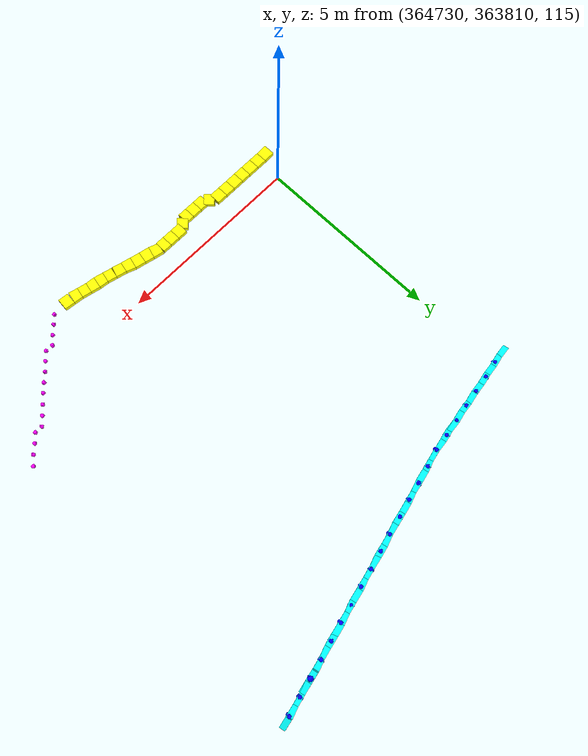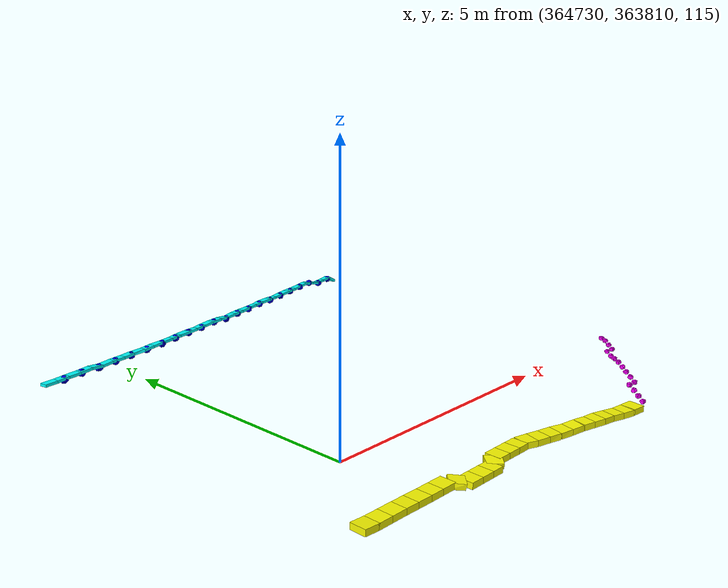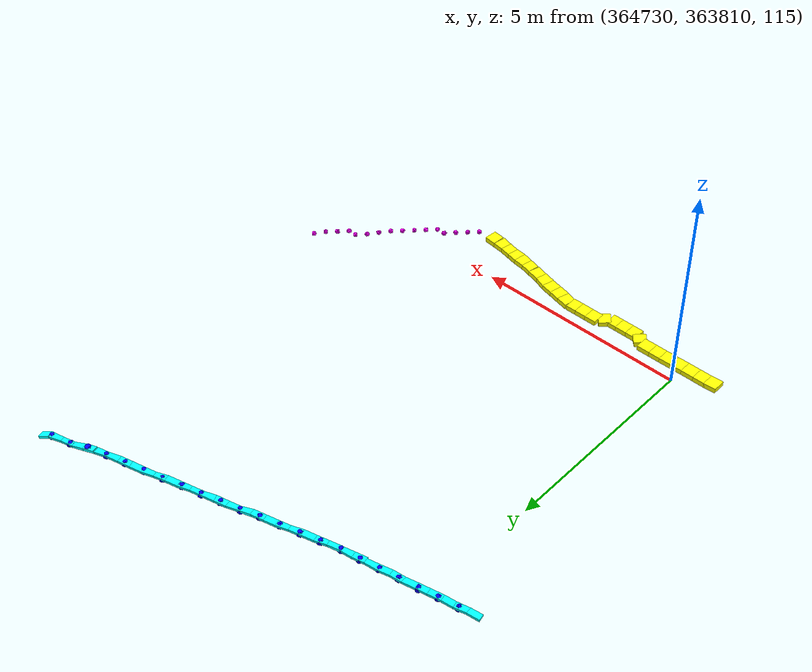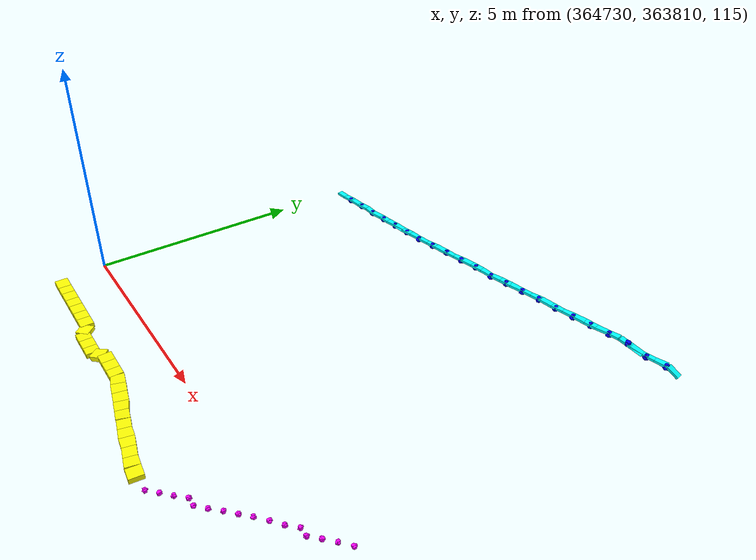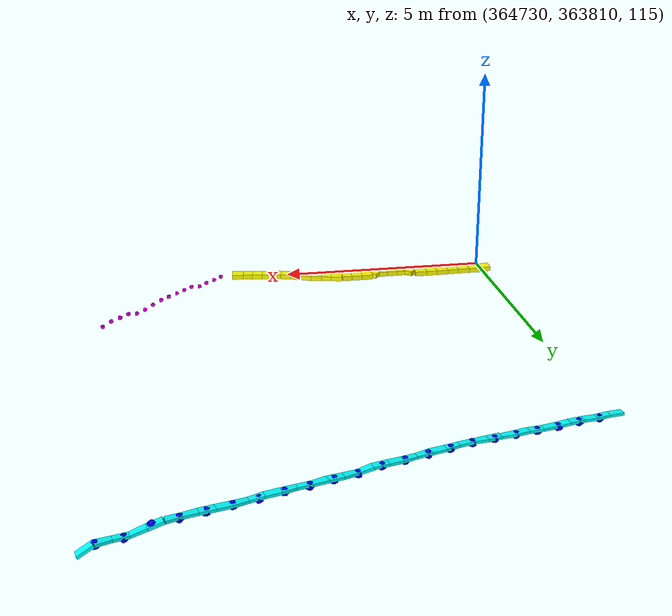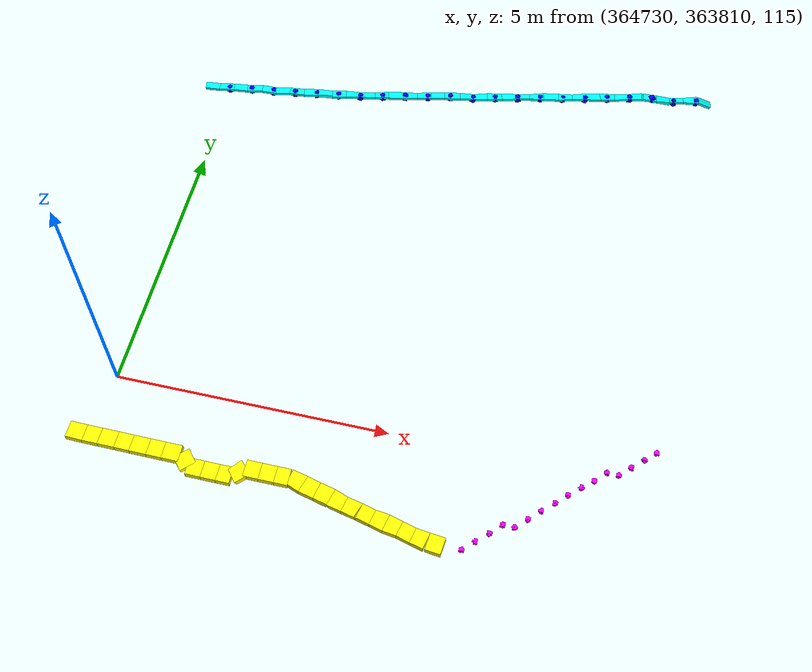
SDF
<sdf version="1.5">
 <world name="default">
  <include><uri>model://sun</uri></include>
  <model name="road_segment_276">
   <static>true</static>
   <pose>364729.49 363809.04 114.50000000026193 0 0.0665681629285173 0.0</pose>
   <link name="link">
    <collision name="collision">
     <geometry><box><size>0.30066592753880705 0.3 0.12</size></box></geometry>
     <surface><friction><ode><mu>0.02</mu><mu2>0.02</mu2></ode></friction></surface>
    </collision>
    <visual name="visual">
     <geometry><box><size>0.30066592753880705 0.3 0.12</size></box></geometry>
     <material><ambient>1 1 0 1</ambient><diffuse>1 1 0 1</diffuse><emissive>1 1 0 1</emissive></material>
    </visual>
   </link>
  </model>
  <model name="road_segment_277">
   <static>true</static>
   <pose>364729.79000000004 363809.04 114.49000000026193 0 8.536934122910294e-10 0.0</pose>
   <link name="link">
    <collision name="collision">
     <geometry><box><size>0.29999999998835847 0.3 0.12</size></box></geometry>
     <surface><friction><ode><mu>0.02</mu><mu2>0.02</mu2></ode></friction></surface>
    </collision>
    <visual name="visual">
     <geometry><box><size>0.29999999998835847 0.3 0.12</size></box></geometry>
     <material><ambient>1 1 0 1</ambient><diffuse>1 1 0 1</diffuse><emissive>1 1 0 1</emissive></material>
    </visual>
   </link>
  </model>
  <model name="road_segment_278">
   <static>true</static>
   <pose>364730.08999999997 363809.04 114.49000000013388 0 -0.0 0.0</pose>
   <link name="link">
    <collision name="collision">
     <geometry><box><size>0.29999999998835847 0.3 0.12</size></box></geometry>
     <surface><friction><ode><mu>0.02</mu><mu2>0.02</mu2></ode></friction></surface>
    </collision>
    <visual name="visual">
     <geometry><box><size>0.29999999998835847 0.3 0.12</size></box></geometry>
     <material><ambient>1 1 0 1</ambient><diffuse>1 1 0 1</diffuse><emissive>1 1 0 1</emissive></material>
    </visual>
   </link>
  </model>
  <model name="road_segment_279">
   <static>true</static>
   <pose>364730.39 363809.04 114.4875000001666 0 0.01666512349640141 0.0</pose>
   <link name="link">
    <collision name="collision">
     <geometry><box><size>0.300041663760819 0.3 0.12</size></box></geometry>
     <surface><friction><ode><mu>0.02</mu><mu2>0.02</mu2></ode></friction></surface>
    </collision>
    <visual name="visual">
     <geometry><box><size>0.300041663760819 0.3 0.12</size></box></geometry>
     <material><ambient>1 1 0 1</ambient><diffuse>1 1 0 1</diffuse><emissive>1 1 0 1</emissive></material>
    </visual>
   </link>
  </model>
  <model name="road_segment_280">
   <static>true</static>
   <pose>364730.69 363809.04 114.48250000009968 0 0.01666512437565434 0.0</pose>
   <link name="link">
    <collision name="collision">
     <geometry><box><size>0.30004166382343156 0.3 0.12</size></box></geometry>
     <surface><friction><ode><mu>0.02</mu><mu2>0.02</mu2></ode></friction></surface>
    </collision>
    <visual name="visual">
     <geometry><box><size>0.30004166382343156 0.3 0.12</size></box></geometry>
     <material><ambient>1 1 0 1</ambient><diffuse>1 1 0 1</diffuse><emissive>1 1 0 1</emissive></material>
    </visual>
   </link>
  </model>
  <model name="road_segment_281">
   <static>true</static>
   <pose>364730.99 363809.04 114.48 0 -0.0 0.0</pose>
   <link name="link">
    <collision name="collision">
     <geometry><box><size>0.29999999998835847 0.3 0.12</size></box></geometry>
     <surface><friction><ode><mu>0.02</mu><mu2>0.02</mu2></ode></friction></surface>
    </collision>
    <visual name="visual">
     <geometry><box><size>0.29999999998835847 0.3 0.12</size></box></geometry>
     <material><ambient>1 1 0 1</ambient><diffuse>1 1 0 1</diffuse><emissive>1 1 0 1</emissive></material>
    </visual>
   </link>
  </model>
  <model name="road_segment_282">
   <static>true</static>
   <pose>364731.29000000004 363809.04 114.48 0 -0.0 0.0</pose>
   <link name="link">
    <collision name="collision">
     <geometry><box><size>0.29999999998835847 0.3 0.12</size></box></geometry>
     <surface><friction><ode><mu>0.02</mu><mu2>0.02</mu2></ode></friction></surface>
    </collision>
    <visual name="visual">
     <geometry><box><size>0.29999999998835847 0.3 0.12</size></box></geometry>
     <material><ambient>1 1 0 1</ambient><diffuse>1 1 0 1</diffuse><emissive>1 1 0 1</emissive></material>
    </visual>
   </link>
  </model>
  <model name="road_segment_283">
   <static>true</static>
   <pose>364731.54000000004 363808.94 114.47000000013388 0 0.07059317834825851 -0.7853981632519291</pose>
   <link name="link">
    <collision name="collision">
     <geometry><box><size>0.2835489375316369 0.3 0.12</size></box></geometry>
     <surface><friction><ode><mu>0.2</mu><mu2>0.2</mu2></ode></friction></surface>
    </collision>
    <visual name="visual">
     <geometry><box><size>0.2835489375316369 0.3 0.12</size></box></geometry>
     <material><ambient>1 1 0 1</ambient><diffuse>1 1 0 1</diffuse><emissive>1 1 0 1</emissive></material>
    </visual>
   </link>
  </model>
  <model name="road_segment_284">
   <static>true</static>
   <pose>364731.7733333333 363808.84 114.46000000013387 0 1.0041034670539973e-09 0.0</pose>
   <link name="link">
    <collision name="collision">
     <geometry><box><size>0.26666666666278616 0.3 0.12</size></box></geometry>
     <surface><friction><ode><mu>0.02</mu><mu2>0.02</mu2></ode></friction></surface>
    </collision>
    <visual name="visual">
     <geometry><box><size>0.26666666666278616 0.3 0.12</size></box></geometry>
     <material><ambient>1 1 0 1</ambient><diffuse>1 1 0 1</diffuse><emissive>1 1 0 1</emissive></material>
    </visual>
   </link>
  </model>
  <model name="road_segment_285">
   <static>true</static>
   <pose>364732.04000000004 363808.84 114.46 0 -0.0 0.0</pose>
   <link name="link">
    <collision name="collision">
     <geometry><box><size>0.26666666666278616 0.3 0.12</size></box></geometry>
     <surface><friction><ode><mu>0.02</mu><mu2>0.02</mu2></ode></friction></surface>
    </collision>
    <visual name="visual">
     <geometry><box><size>0.26666666666278616 0.3 0.12</size></box></geometry>
     <material><ambient>1 1 0 1</ambient><diffuse>1 1 0 1</diffuse><emissive>1 1 0 1</emissive></material>
    </visual>
   </link>
  </model>
  <model name="road_segment_286">
   <static>true</static>
   <pose>364732.30666666664 363808.84 114.46 0 -0.0 0.0</pose>
   <link name="link">
    <collision name="collision">
     <geometry><box><size>0.26666666666278616 0.3 0.12</size></box></geometry>
     <surface><friction><ode><mu>0.02</mu><mu2>0.02</mu2></ode></friction></surface>
    </collision>
    <visual name="visual">
     <geometry><box><size>0.26666666666278616 0.3 0.12</size></box></geometry>
     <material><ambient>1 1 0 1</ambient><diffuse>1 1 0 1</diffuse><emissive>1 1 0 1</emissive></material>
    </visual>
   </link>
  </model>
  <model name="road_segment_287">
   <static>true</static>
   <pose>364732.54000000004 363808.94 114.4650000003376 0 -0.03534062109405549 0.7853981632519291</pose>
   <link name="link">
    <collision name="collision">
     <geometry><box><size>0.2830194339608753 0.3 0.12</size></box></geometry>
     <surface><friction><ode><mu>0.02</mu><mu2>0.02</mu2></ode></friction></surface>
    </collision>
    <visual name="visual">
     <geometry><box><size>0.2830194339608753 0.3 0.12</size></box></geometry>
     <material><ambient>1 1 0 1</ambient><diffuse>1 1 0 1</diffuse><emissive>1 1 0 1</emissive></material>
    </visual>
   </link>
  </model>
  <model name="road_segment_288">
   <static>true</static>
   <pose>364732.7733333333 363809.04 114.4700000005384 0 1.0258993654737554e-09 0.0</pose>
   <link name="link">
    <collision name="collision">
     <geometry><box><size>0.26666666666278616 0.3 0.12</size></box></geometry>
     <surface><friction><ode><mu>0.02</mu><mu2>0.02</mu2></ode></friction></surface>
    </collision>
    <visual name="visual">
     <geometry><box><size>0.26666666666278616 0.3 0.12</size></box></geometry>
     <material><ambient>1 1 0 1</ambient><diffuse>1 1 0 1</diffuse><emissive>1 1 0 1</emissive></material>
    </visual>
   </link>
  </model>
  <model name="road_segment_289">
   <static>true</static>
   <pose>364733.04000000004 363809.04 114.47000000040163 0 -0.0 0.0</pose>
   <link name="link">
    <collision name="collision">
     <geometry><box><size>0.26666666666278616 0.3 0.12</size></box></geometry>
     <surface><friction><ode><mu>0.02</mu><mu2>0.02</mu2></ode></friction></surface>
    </collision>
    <visual name="visual">
     <geometry><box><size>0.26666666666278616 0.3 0.12</size></box></geometry>
     <material><ambient>1 1 0 1</ambient><diffuse>1 1 0 1</diffuse><emissive>1 1 0 1</emissive></material>
    </visual>
   </link>
  </model>
  <model name="road_segment_290">
   <static>true</static>
   <pose>364733.30666666664 363809.04 114.47000000040163 0 -0.0 0.0</pose>
   <link name="link">
    <collision name="collision">
     <geometry><box><size>0.26666666666278616 0.3 0.12</size></box></geometry>
     <surface><friction><ode><mu>0.02</mu><mu2>0.02</mu2></ode></friction></surface>
    </collision>
    <visual name="visual">
     <geometry><box><size>0.26666666666278616 0.3 0.12</size></box></geometry>
     <material><ambient>1 1 0 1</ambient><diffuse>1 1 0 1</diffuse><emissive>1 1 0 1</emissive></material>
    </visual>
   </link>
  </model>
  <model name="road_segment_291">
   <static>true</static>
   <pose>364733.57333333336 363809.00666666665 114.4683333334677 0 0.012126188798864344 -0.24497866307550445</pose>
   <link name="link">
    <collision name="collision">
     <geometry><box><size>0.27489391893254195 0.3 0.12</size></box></geometry>
     <surface><friction><ode><mu>0.02</mu><mu2>0.02</mu2></ode></friction></surface>
    </collision>
    <visual name="visual">
     <geometry><box><size>0.27489391893254195 0.3 0.12</size></box></geometry>
     <material><ambient>1 1 0 1</ambient><diffuse>1 1 0 1</diffuse><emissive>1 1 0 1</emissive></material>
    </visual>
   </link>
  </model>
  <model name="road_segment_292">
   <static>true</static>
   <pose>364733.83999999997 363808.94 114.46499999986757 0 0.01212618685105899 -0.24497866307550445</pose>
   <link name="link">
    <collision name="collision">
     <geometry><box><size>0.27489391892604875 0.3 0.12</size></box></geometry>
     <surface><friction><ode><mu>0.02</mu><mu2>0.02</mu2></ode></friction></surface>
    </collision>
    <visual name="visual">
     <geometry><box><size>0.27489391892604875 0.3 0.12</size></box></geometry>
     <material><ambient>1 1 0 1</ambient><diffuse>1 1 0 1</diffuse><emissive>1 1 0 1</emissive></material>
    </visual>
   </link>
  </model>
  <model name="road_segment_293">
   <static>true</static>
   <pose>364734.1066666667 363808.8733333333 114.46166666660069 0 0.012126186373991309 -0.24497866328094325</pose>
   <link name="link">
    <collision name="collision">
     <geometry><box><size>0.2748939189385769 0.3 0.12</size></box></geometry>
     <surface><friction><ode><mu>0.02</mu><mu2>0.02</mu2></ode></friction></surface>
    </collision>
    <visual name="visual">
     <geometry><box><size>0.2748939189385769 0.3 0.12</size></box></geometry>
     <material><ambient>1 1 0 1</ambient><diffuse>1 1 0 1</diffuse><emissive>1 1 0 1</emissive></material>
    </visual>
   </link>
  </model>
  <model name="road_segment_294">
   <static>true</static>
   <pose>364734.3733333333 363808.80666666664 114.46333333318975 0 -0.02424880753749909 -0.24497866307550445</pose>
   <link name="link">
    <collision name="collision">
     <geometry><box><size>0.27495454168286093 0.3 0.12</size></box></geometry>
     <surface><friction><ode><mu>0.02</mu><mu2>0.02</mu2></ode></friction></surface>
    </collision>
    <visual name="visual">
     <geometry><box><size>0.27495454168286093 0.3 0.12</size></box></geometry>
     <material><ambient>1 1 0 1</ambient><diffuse>1 1 0 1</diffuse><emissive>1 1 0 1</emissive></material>
    </visual>
   </link>
  </model>
  <model name="road_segment_295">
   <static>true</static>
   <pose>364734.64 363808.74 114.47333333318976 0 -0.04846913486712039 -0.24497866307550445</pose>
   <link name="link">
    <collision name="collision">
     <geometry><box><size>0.27519689921372975 0.3 0.12</size></box></geometry>
     <surface><friction><ode><mu>0.02</mu><mu2>0.02</mu2></ode></friction></surface>
    </collision>
    <visual name="visual">
     <geometry><box><size>0.27519689921372975 0.3 0.12</size></box></geometry>
     <material><ambient>1 1 0 1</ambient><diffuse>1 1 0 1</diffuse><emissive>1 1 0 1</emissive></material>
    </visual>
   </link>
  </model>
  <model name="road_segment_296">
   <static>true</static>
   <pose>364734.9066666666 363808.67333333334 114.48 0 -0.0 -0.24497866307550445</pose>
   <link name="link">
    <collision name="collision">
     <geometry><box><size>0.2748737083669814 0.3 0.12</size></box></geometry>
     <surface><friction><ode><mu>0.02</mu><mu2>0.02</mu2></ode></friction></surface>
    </collision>
    <visual name="visual">
     <geometry><box><size>0.2748737083669814 0.3 0.12</size></box></geometry>
     <material><ambient>1 1 0 1</ambient><diffuse>1 1 0 1</diffuse><emissive>1 1 0 1</emissive></material>
    </visual>
   </link>
  </model>
  <model name="road_segment_297">
   <static>true</static>
   <pose>364735.165 363808.615 114.48 0 -0.0 -0.19739555980510565</pose>
   <link name="link">
    <collision name="collision">
     <geometry><box><size>0.25495097567735614 0.3 0.12</size></box></geometry>
     <surface><friction><ode><mu>0.02</mu><mu2>0.02</mu2></ode></friction></surface>
    </collision>
    <visual name="visual">
     <geometry><box><size>0.25495097567735614 0.3 0.12</size></box></geometry>
     <material><ambient>1 1 0 1</ambient><diffuse>1 1 0 1</diffuse><emissive>1 1 0 1</emissive></material>
    </visual>
   </link>
  </model>
  <model name="road_segment_298">
   <static>true</static>
   <pose>364735.415 363808.56500000006 114.47500000014698 0 0.039203129948236 -0.19739555980510565</pose>
   <link name="link">
    <collision name="collision">
     <geometry><box><size>0.2551470164296595 0.3 0.12</size></box></geometry>
     <surface><friction><ode><mu>0.02</mu><mu2>0.02</mu2></ode></friction></surface>
    </collision>
    <visual name="visual">
     <geometry><box><size>0.2551470164296595 0.3 0.12</size></box></geometry>
     <material><ambient>1 1 0 1</ambient><diffuse>1 1 0 1</diffuse><emissive>1 1 0 1</emissive></material>
    </visual>
   </link>
  </model>
  <model name="road_segment_299">
   <static>true</static>
   <pose>364735.665 363808.515 114.46500000014697 0 0.03920313224888583 -0.19739556002898126</pose>
   <link name="link">
    <collision name="collision">
     <geometry><box><size>0.2551470164641079 0.3 0.12</size></box></geometry>
     <surface><friction><ode><mu>0.02</mu><mu2>0.02</mu2></ode></friction></surface>
    </collision>
    <visual name="visual">
     <geometry><box><size>0.2551470164641079 0.3 0.12</size></box></geometry>
     <material><ambient>1 1 0 1</ambient><diffuse>1 1 0 1</diffuse><emissive>1 1 0 1</emissive></material>
    </visual>
   </link>
  </model>
  <model name="road_segment_300">
   <static>true</static>
   <pose>364735.915 363808.46499999997 114.46 0 -0.0 -0.19739555980510565</pose>
   <link name="link">
    <collision name="collision">
     <geometry><box><size>0.25495097567735614 0.3 0.12</size></box></geometry>
     <surface><friction><ode><mu>0.02</mu><mu2>0.02</mu2></ode></friction></surface>
    </collision>
    <visual name="visual">
     <geometry><box><size>0.25495097567735614 0.3 0.12</size></box></geometry>
     <material><ambient>1 1 0 1</ambient><diffuse>1 1 0 1</diffuse><emissive>1 1 0 1</emissive></material>
    </visual>
   </link>
  </model>
  <model name="road_segment_301">
   <static>true</static>
   <pose>364736.18666666665 363808.42666666664 114.46 0 -0.0 -0.09065988721863681</pose>
   <link name="link">
    <collision name="collision">
     <geometry><box><size>0.29454296046036466 0.3 0.12</size></box></geometry>
     <surface><friction><ode><mu>0.02</mu><mu2>0.02</mu2></ode></friction></surface>
    </collision>
    <visual name="visual">
     <geometry><box><size>0.29454296046036466 0.3 0.12</size></box></geometry>
     <material><ambient>1 1 0 1</ambient><diffuse>1 1 0 1</diffuse><emissive>1 1 0 1</emissive></material>
    </visual>
   </link>
  </model>
  <model name="straight_marker_193">
   <static>true</static>
   <pose>364736.64 363808.44 114.44999999999999 0 0 0</pose>
   <link name="link">
    <visual name="visual">
     <geometry><sphere><radius>0.05</radius></sphere></geometry>
     <material><ambient>1 0 1 1</ambient><diffuse>1 0 1 1</diffuse><emissive>1 0 1 1</emissive></material>
    </visual>
   </link>
  </model>
  <model name="straight_marker_194">
   <static>true</static>
   <pose>364736.84 363808.64 114.44999999999999 0 0 0</pose>
   <link name="link">
    <visual name="visual">
     <geometry><sphere><radius>0.05</radius></sphere></geometry>
     <material><ambient>1 0 1 1</ambient><diffuse>1 0 1 1</diffuse><emissive>1 0 1 1</emissive></material>
    </visual>
   </link>
  </model>
  <model name="straight_marker_195">
   <static>true</static>
   <pose>364737.04 363808.84 114.44999999999999 0 0 0</pose>
   <link name="link">
    <visual name="visual">
     <geometry><sphere><radius>0.05</radius></sphere></geometry>
     <material><ambient>1 0 1 1</ambient><diffuse>1 0 1 1</diffuse><emissive>1 0 1 1</emissive></material>
    </visual>
   </link>
  </model>
  <model name="straight_marker_196">
   <static>true</static>
   <pose>364737.24 363809.04 114.44999999999999 0 0 0</pose>
   <link name="link">
    <visual name="visual">
     <geometry><sphere><radius>0.05</radius></sphere></geometry>
     <material><ambient>1 0 1 1</ambient><diffuse>1 0 1 1</diffuse><emissive>1 0 1 1</emissive></material>
    </visual>
   </link>
  </model>
  <model name="straight_marker_197">
   <static>true</static>
   <pose>364737.44 363809.04 114.44999999999999 0 0 0</pose>
   <link name="link">
    <visual name="visual">
     <geometry><sphere><radius>0.05</radius></sphere></geometry>
     <material><ambient>1 0 1 1</ambient><diffuse>1 0 1 1</diffuse><emissive>1 0 1 1</emissive></material>
    </visual>
   </link>
  </model>
  <model name="straight_marker_198">
   <static>true</static>
   <pose>364737.64 363809.24 114.44999999999999 0 0 0</pose>
   <link name="link">
    <visual name="visual">
     <geometry><sphere><radius>0.05</radius></sphere></geometry>
     <material><ambient>1 0 1 1</ambient><diffuse>1 0 1 1</diffuse><emissive>1 0 1 1</emissive></material>
    </visual>
   </link>
  </model>
  <model name="straight_marker_199">
   <static>true</static>
   <pose>364737.84 363809.44 114.44999999999999 0 0 0</pose>
   <link name="link">
    <visual name="visual">
     <geometry><sphere><radius>0.05</radius></sphere></geometry>
     <material><ambient>1 0 1 1</ambient><diffuse>1 0 1 1</diffuse><emissive>1 0 1 1</emissive></material>
    </visual>
   </link>
  </model>
  <model name="straight_marker_200">
   <static>true</static>
   <pose>364738.04 363809.64 114.44999999999999 0 0 0</pose>
   <link name="link">
    <visual name="visual">
     <geometry><sphere><radius>0.05</radius></sphere></geometry>
     <material><ambient>1 0 1 1</ambient><diffuse>1 0 1 1</diffuse><emissive>1 0 1 1</emissive></material>
    </visual>
   </link>
  </model>
  <model name="straight_marker_201">
   <static>true</static>
   <pose>364738.24 363809.84 114.44999999999999 0 0 0</pose>
   <link name="link">
    <visual name="visual">
     <geometry><sphere><radius>0.05</radius></sphere></geometry>
     <material><ambient>1 0 1 1</ambient><diffuse>1 0 1 1</diffuse><emissive>1 0 1 1</emissive></material>
    </visual>
   </link>
  </model>
  <model name="straight_marker_202">
   <static>true</static>
   <pose>364738.44 363810.04 114.42000000041035 0 0 0</pose>
   <link name="link">
    <visual name="visual">
     <geometry><sphere><radius>0.05</radius></sphere></geometry>
     <material><ambient>1 0 1 1</ambient><diffuse>1 0 1 1</diffuse><emissive>1 0 1 1</emissive></material>
    </visual>
   </link>
  </model>
  <model name="straight_marker_203">
   <static>true</static>
   <pose>364738.64 363810.24 114.380000000617 0 0 0</pose>
   <link name="link">
    <visual name="visual">
     <geometry><sphere><radius>0.05</radius></sphere></geometry>
     <material><ambient>1 0 1 1</ambient><diffuse>1 0 1 1</diffuse><emissive>1 0 1 1</emissive></material>
    </visual>
   </link>
  </model>
  <model name="straight_marker_204">
   <static>true</static>
   <pose>364738.84 363810.44 114.38 0 0 0</pose>
   <link name="link">
    <visual name="visual">
     <geometry><sphere><radius>0.05</radius></sphere></geometry>
     <material><ambient>1 0 1 1</ambient><diffuse>1 0 1 1</diffuse><emissive>1 0 1 1</emissive></material>
    </visual>
   </link>
  </model>
  <model name="straight_marker_205">
   <static>true</static>
   <pose>364739.04 363810.44 114.38 0 0 0</pose>
   <link name="link">
    <visual name="visual">
     <geometry><sphere><radius>0.05</radius></sphere></geometry>
     <material><ambient>1 0 1 1</ambient><diffuse>1 0 1 1</diffuse><emissive>1 0 1 1</emissive></material>
    </visual>
   </link>
  </model>
  <model name="straight_marker_206">
   <static>true</static>
   <pose>364739.24 363810.64 114.38 0 0 0</pose>
   <link name="link">
    <visual name="visual">
     <geometry><sphere><radius>0.05</radius></sphere></geometry>
     <material><ambient>1 0 1 1</ambient><diffuse>1 0 1 1</diffuse><emissive>1 0 1 1</emissive></material>
    </visual>
   </link>
  </model>
  <model name="straight_marker_207">
   <static>true</static>
   <pose>364739.44 363810.84 114.38 0 0 0</pose>
   <link name="link">
    <visual name="visual">
     <geometry><sphere><radius>0.05</radius></sphere></geometry>
     <material><ambient>1 0 1 1</ambient><diffuse>1 0 1 1</diffuse><emissive>1 0 1 1</emissive></material>
    </visual>
   </link>
  </model>
  <model name="straight_marker_208">
   <static>true</static>
   <pose>364739.64 363811.04 114.34000000148428 0 0 0</pose>
   <link name="link">
    <visual name="visual">
     <geometry><sphere><radius>0.05</radius></sphere></geometry>
     <material><ambient>1 0 1 1</ambient><diffuse>1 0 1 1</diffuse><emissive>1 0 1 1</emissive></material>
    </visual>
   </link>
  </model>
  <model name="normal_astar_segment_247">
   <static>true</static>
   <pose>364729.35176470585 363817.3458823529 114.46852941182915 0 0.009874084974242222 0.15865526234849295</pose>
   <link name="link">
    <visual name="visual">
     <geometry><box><size>0.29787308320838374 0.15 0.06</size></box></geometry>
     <material><ambient>0 1 1 1</ambient><diffuse>0 1 1 1</diffuse><emissive>0 1 1 1</emissive></material>
    </visual>
   </link>
  </model>
  <model name="normal_astar_segment_248">
   <static>true</static>
   <pose>364729.64588235295 363817.3929411765 114.46352941182916 0 0.02369414054317381 0.15865526215552683</pose>
   <link name="link">
    <visual name="visual">
     <geometry><box><size>0.2979421926611886 0.15 0.06</size></box></geometry>
     <material><ambient>0 1 1 1</ambient><diffuse>0 1 1 1</diffuse><emissive>0 1 1 1</emissive></material>
    </visual>
   </link>
  </model>
  <model name="normal_astar_segment_249">
   <static>true</static>
   <pose>364729.94 363817.44 114.46 0 -0.0 0.15865526212465225</pose>
   <link name="link">
    <visual name="visual">
     <geometry><box><size>0.2978585624261241 0.15 0.06</size></box></geometry>
     <material><ambient>0 1 1 1</ambient><diffuse>0 1 1 1</diffuse><emissive>0 1 1 1</emissive></material>
    </visual>
   </link>
  </model>
  <model name="normal_astar_segment_250">
   <static>true</static>
   <pose>364730.23411764705 363817.4870588235 114.46 0 -0.0 0.15865526215552683</pose>
   <link name="link">
    <visual name="visual">
     <geometry><box><size>0.2978585623686475 0.15 0.06</size></box></geometry>
     <material><ambient>0 1 1 1</ambient><diffuse>0 1 1 1</diffuse><emissive>0 1 1 1</emissive></material>
    </visual>
   </link>
  </model>
  <model name="normal_astar_segment_251">
   <static>true</static>
   <pose>364730.52823529416 363817.5341176471 114.445 0 0.10038042789938308 0.15865526234849295</pose>
   <link name="link">
    <visual name="visual">
     <geometry><box><size>0.2993655343919802 0.15 0.06</size></box></geometry>
     <material><ambient>0 1 1 1</ambient><diffuse>0 1 1 1</diffuse><emissive>0 1 1 1</emissive></material>
    </visual>
   </link>
  </model>
  <model name="normal_astar_segment_252">
   <static>true</static>
   <pose>364730.82235294115 363817.5811764706 114.42999999999999 0 -0.0 0.15865526215552683</pose>
   <link name="link">
    <visual name="visual">
     <geometry><box><size>0.2978585623686475 0.15 0.06</size></box></geometry>
     <material><ambient>0 1 1 1</ambient><diffuse>0 1 1 1</diffuse><emissive>0 1 1 1</emissive></material>
    </visual>
   </link>
  </model>
  <model name="normal_astar_segment_253">
   <static>true</static>
   <pose>364731.11647058825 363817.62823529413 114.42999999999999 0 -0.0 0.15865526215552683</pose>
   <link name="link">
    <visual name="visual">
     <geometry><box><size>0.2978585623686475 0.15 0.06</size></box></geometry>
     <material><ambient>0 1 1 1</ambient><diffuse>0 1 1 1</diffuse><emissive>0 1 1 1</emissive></material>
    </visual>
   </link>
  </model>
  <model name="normal_astar_segment_254">
   <static>true</static>
   <pose>364731.41058823525 363817.67529411765 114.42705882359719 0 0.019746245336425147 0.15865526215552683</pose>
   <link name="link">
    <visual name="visual">
     <geometry><box><size>0.2979166414466419 0.15 0.06</size></box></geometry>
     <material><ambient>0 1 1 1</ambient><diffuse>0 1 1 1</diffuse><emissive>0 1 1 1</emissive></material>
    </visual>
   </link>
  </model>
  <model name="normal_astar_segment_255">
   <static>true</static>
   <pose>364731.70470588235 363817.7223529412 114.4220588235972 0 0.013823288765576243 0.15865526231761837</pose>
   <link name="link">
    <visual name="visual">
     <geometry><box><size>0.2978870226016119 0.15 0.06</size></box></geometry>
     <material><ambient>0 1 1 1</ambient><diffuse>0 1 1 1</diffuse><emissive>0 1 1 1</emissive></material>
    </visual>
   </link>
  </model>
  <model name="normal_astar_segment_256">
   <static>true</static>
   <pose>364731.99882352946 363817.76941176475 114.41999999999999 0 -0.0 0.15865526215552683</pose>
   <link name="link">
    <visual name="visual">
     <geometry><box><size>0.2978585623686475 0.15 0.06</size></box></geometry>
     <material><ambient>0 1 1 1</ambient><diffuse>0 1 1 1</diffuse><emissive>0 1 1 1</emissive></material>
    </visual>
   </link>
  </model>
  <model name="normal_astar_segment_257">
   <static>true</static>
   <pose>364732.29294117645 363817.81647058827 114.41999999999999 0 -0.0 0.15865526215552683</pose>
   <link name="link">
    <visual name="visual">
     <geometry><box><size>0.2978585623686475 0.15 0.06</size></box></geometry>
     <material><ambient>0 1 1 1</ambient><diffuse>0 1 1 1</diffuse><emissive>0 1 1 1</emissive></material>
    </visual>
   </link>
  </model>
  <model name="normal_astar_segment_258">
   <static>true</static>
   <pose>364732.58516129036 363817.875483871 114.4164516130598 0 0.02374084665832978 0.2397431089040901</pose>
   <link name="link">
    <visual name="visual">
     <geometry><box><size>0.2989548217399656 0.15 0.06</size></box></geometry>
     <material><ambient>0 1 1 1</ambient><diffuse>0 1 1 1</diffuse><emissive>0 1 1 1</emissive></material>
    </visual>
   </link>
  </model>
  <model name="normal_astar_segment_259">
   <static>true</static>
   <pose>364732.875483871 363817.9464516129 114.40935483902521 0 0.023740847695566315 0.2397431087611477</pose>
   <link name="link">
    <visual name="visual">
     <geometry><box><size>0.2989548216769445 0.15 0.06</size></box></geometry>
     <material><ambient>0 1 1 1</ambient><diffuse>0 1 1 1</diffuse><emissive>0 1 1 1</emissive></material>
    </visual>
   </link>
  </model>
  <model name="normal_astar_segment_260">
   <static>true</static>
   <pose>364733.1658064516 363818.0174193549 114.40290322596539 0 0.019425537404587367 0.2397431089040901</pose>
   <link name="link">
    <visual name="visual">
     <geometry><box><size>0.2989269745708648 0.15 0.06</size></box></geometry>
     <material><ambient>0 1 1 1</ambient><diffuse>0 1 1 1</diffuse><emissive>0 1 1 1</emissive></material>
    </visual>
   </link>
  </model>
  <model name="normal_astar_segment_261">
   <static>true</static>
   <pose>364733.4561290323 363818.08838709677 114.3919354840099 0 0.053914311200853694 0.2397431089040901</pose>
   <link name="link">
    <visual name="visual">
     <geometry><box><size>0.29930547424777115 0.15 0.06</size></box></geometry>
     <material><ambient>0 1 1 1</ambient><diffuse>0 1 1 1</diffuse><emissive>0 1 1 1</emissive></material>
    </visual>
   </link>
  </model>
  <model name="normal_astar_segment_262">
   <static>true</static>
   <pose>364733.7464516129 363818.1593548388 114.38193548400992 0 0.012951263508171055 0.23974310895033615</pose>
   <link name="link">
    <visual name="visual">
     <geometry><box><size>0.29889564333003954 0.15 0.06</size></box></geometry>
     <material><ambient>0 1 1 1</ambient><diffuse>0 1 1 1</diffuse><emissive>0 1 1 1</emissive></material>
    </visual>
   </link>
  </model>
  <model name="normal_astar_segment_263">
   <static>true</static>
   <pose>364734.0367741935 363818.23032258067 114.38000000000001 0 4.7548523854684776e-14 0.23974310871490162</pose>
   <link name="link">
    <visual name="visual">
     <geometry><box><size>0.2988705760589424 0.15 0.06</size></box></geometry>
     <material><ambient>0 1 1 1</ambient><diffuse>0 1 1 1</diffuse><emissive>0 1 1 1</emissive></material>
    </visual>
   </link>
  </model>
  <model name="normal_astar_segment_264">
   <static>true</static>
   <pose>364734.32709677424 363818.30129032256 114.37596774228872 0 0.02697675739382561 0.2397431089040901</pose>
   <link name="link">
    <visual name="visual">
     <geometry><box><size>0.29897935990811564 0.15 0.06</size></box></geometry>
     <material><ambient>0 1 1 1</ambient><diffuse>0 1 1 1</diffuse><emissive>0 1 1 1</emissive></material>
    </visual>
   </link>
  </model>
  <model name="normal_astar_segment_265">
   <static>true</static>
   <pose>364734.61741935485 363818.37225806457 114.35096774228872 0 0.1394030999056884 0.23974310895033615</pose>
   <link name="link">
    <visual name="visual">
     <geometry><box><size>0.3017982870644103 0.15 0.06</size></box></geometry>
     <material><ambient>0 1 1 1</ambient><diffuse>0 1 1 1</diffuse><emissive>0 1 1 1</emissive></material>
    </visual>
   </link>
  </model>
  <model name="normal_astar_segment_266">
   <static>true</static>
   <pose>364734.90774193546 363818.44322580646 114.33 0 -0.0 0.23974310871490162</pose>
   <link name="link">
    <visual name="visual">
     <geometry><box><size>0.2988705760589424 0.15 0.06</size></box></geometry>
     <material><ambient>0 1 1 1</ambient><diffuse>0 1 1 1</diffuse><emissive>0 1 1 1</emissive></material>
    </visual>
   </link>
  </model>
  <model name="normal_astar_segment_267">
   <static>true</static>
   <pose>364735.1980645161 363818.51419354836 114.33 0 -0.0 0.23974310895033615</pose>
   <link name="link">
    <visual name="visual">
     <geometry><box><size>0.29887057601622113 0.15 0.06</size></box></geometry>
     <material><ambient>0 1 1 1</ambient><diffuse>0 1 1 1</diffuse><emissive>0 1 1 1</emissive></material>
    </visual>
   </link>
  </model>
  <model name="normal_astar_segment_268">
   <static>true</static>
   <pose>364735.4883870968 363818.58516129036 114.32516129039576 0 0.032368657114010234 0.2397431089040901</pose>
   <link name="link">
    <visual name="visual">
     <geometry><box><size>0.29902721228109425 0.15 0.06</size></box></geometry>
     <material><ambient>0 1 1 1</ambient><diffuse>0 1 1 1</diffuse><emissive>0 1 1 1</emissive></material>
    </visual>
   </link>
  </model>
  <model name="normal_astar_segment_269">
   <static>true</static>
   <pose>364735.7787096774 363818.65612903226 114.32016129039576 0 0.0010793322998830493 0.2397431089040901</pose>
   <link name="link">
    <visual name="visual">
     <geometry><box><size>0.2988707501587147 0.15 0.06</size></box></geometry>
     <material><ambient>0 1 1 1</ambient><diffuse>0 1 1 1</diffuse><emissive>0 1 1 1</emissive></material>
    </visual>
   </link>
  </model>
  <model name="normal_astar_segment_270">
   <static>true</static>
   <pose>364736.06903225806 363818.7270967742 114.32000000000001 0 4.75485238636804e-14 0.2397431087611477</pose>
   <link name="link">
    <visual name="visual">
     <geometry><box><size>0.2988705760023996 0.15 0.06</size></box></geometry>
     <material><ambient>0 1 1 1</ambient><diffuse>0 1 1 1</diffuse><emissive>0 1 1 1</emissive></material>
    </visual>
   </link>
  </model>
  <model name="normal_astar_segment_271">
   <static>true</static>
   <pose>364736.3593548387 363818.79806451616 114.31516129054565 0 0.03236865611202467 0.2397431089040901</pose>
   <link name="link">
    <visual name="visual">
     <geometry><box><size>0.29902721227139256 0.15 0.06</size></box></geometry>
     <material><ambient>0 1 1 1</ambient><diffuse>0 1 1 1</diffuse><emissive>0 1 1 1</emissive></material>
    </visual>
   </link>
  </model>
  <model name="normal_astar_segment_272">
   <static>true</static>
   <pose>364736.64967741934 363818.86903225805 114.30016129054565 0 0.06789342062351278 0.2397431089040901</pose>
   <link name="link">
    <visual name="visual">
     <geometry><box><size>0.2995607259710081 0.15 0.06</size></box></geometry>
     <material><ambient>0 1 1 1</ambient><diffuse>0 1 1 1</diffuse><emissive>0 1 1 1</emissive></material>
    </visual>
   </link>
  </model>
  <model name="normal_astar_segment_273">
   <static>true</static>
   <pose>364736.94 363818.94 114.29 0 4.75485238636804e-14 0.2397431087611477</pose>
   <link name="link">
    <visual name="visual">
     <geometry><box><size>0.2988705760023996 0.15 0.06</size></box></geometry>
     <material><ambient>0 1 1 1</ambient><diffuse>0 1 1 1</diffuse><emissive>0 1 1 1</emissive></material>
    </visual>
   </link>
  </model>
  <model name="normal_astar_segment_274">
   <static>true</static>
   <pose>364737.23032258067 363819.01096774195 114.28999999999999 0 -0.0 0.2397431089040901</pose>
   <link name="link">
    <visual name="visual">
     <geometry><box><size>0.298870576072764 0.15 0.06</size></box></geometry>
     <material><ambient>0 1 1 1</ambient><diffuse>0 1 1 1</diffuse><emissive>0 1 1 1</emissive></material>
    </visual>
   </link>
  </model>
  <model name="normal_astar_segment_275">
   <static>true</static>
   <pose>364737.5206451613 363819.08193548385 114.28999999999999 0 -0.0 0.2397431089040901</pose>
   <link name="link">
    <visual name="visual">
     <geometry><box><size>0.298870576072764 0.15 0.06</size></box></geometry>
     <material><ambient>0 1 1 1</ambient><diffuse>0 1 1 1</diffuse><emissive>0 1 1 1</emissive></material>
    </visual>
   </link>
  </model>
  <model name="normal_astar_segment_276">
   <static>true</static>
   <pose>364737.81096774194 363819.1529032258 114.29 0 -4.75485238636804e-14 0.2397431087611477</pose>
   <link name="link">
    <visual name="visual">
     <geometry><box><size>0.2988705760023996 0.15 0.06</size></box></geometry>
     <material><ambient>0 1 1 1</ambient><diffuse>0 1 1 1</diffuse><emissive>0 1 1 1</emissive></material>
    </visual>
   </link>
  </model>
  <model name="normal_astar_segment_277">
   <static>true</static>
   <pose>364738.1012903226 363819.22387096775 114.29 0 4.754852385248584e-14 0.2397431089040901</pose>
   <link name="link">
    <visual name="visual">
     <geometry><box><size>0.298870576072764 0.15 0.06</size></box></geometry>
     <material><ambient>0 1 1 1</ambient><diffuse>0 1 1 1</diffuse><emissive>0 1 1 1</emissive></material>
    </visual>
   </link>
  </model>
  <model name="normal_astar_segment_278">
   <static>true</static>
   <pose>364738.3916129032 363819.29483870964 114.25854838809268 0 0.20744208756769925 0.2397431089040901</pose>
   <link name="link">
    <visual name="visual">
     <geometry><box><size>0.30541846180009713 0.15 0.06</size></box></geometry>
     <material><ambient>0 1 1 1</ambient><diffuse>0 1 1 1</diffuse><emissive>0 1 1 1</emissive></material>
    </visual>
   </link>
  </model>
  <model name="normal_astar_segment_279">
   <static>true</static>
   <pose>364738.6819354839 363819.36580645165 114.19354838809268 0 0.22083954135331552 0.23974310895033615</pose>
   <link name="link">
    <visual name="visual">
     <geometry><box><size>0.3063096449391348 0.15 0.06</size></box></geometry>
     <material><ambient>0 1 1 1</ambient><diffuse>0 1 1 1</diffuse><emissive>0 1 1 1</emissive></material>
    </visual>
   </link>
  </model>
  <model name="normal_astar_segment_280">
   <static>true</static>
   <pose>364738.97225806455 363819.43677419354 114.16 0 -0.0 0.23974310871490162</pose>
   <link name="link">
    <visual name="visual">
     <geometry><box><size>0.2988705760589424 0.15 0.06</size></box></geometry>
     <material><ambient>0 1 1 1</ambient><diffuse>0 1 1 1</diffuse><emissive>0 1 1 1</emissive></material>
    </visual>
   </link>
  </model>
  <model name="normal_astar_segment_281">
   <static>true</static>
   <pose>364739.26258064515 363819.50774193543 114.16000000000001 0 -4.7548523861481475e-14 0.23974310895033615</pose>
   <link name="link">
    <visual name="visual">
     <geometry><box><size>0.29887057601622113 0.15 0.06</size></box></geometry>
     <material><ambient>0 1 1 1</ambient><diffuse>0 1 1 1</diffuse><emissive>0 1 1 1</emissive></material>
    </visual>
   </link>
  </model>
  <model name="normal_astar_segment_282">
   <static>true</static>
   <pose>364739.55290322576 363819.57870967744 114.085 0 0.465158055584033 0.2397431089040901</pose>
   <link name="link">
    <visual name="visual">
     <geometry><box><size>0.33440039061292387 0.15 0.06</size></box></geometry>
     <material><ambient>0 1 1 1</ambient><diffuse>0 1 1 1</diffuse><emissive>0 1 1 1</emissive></material>
    </visual>
   </link>
  </model>
  <model name="dijkstra_marker_156">
   <static>true</static>
   <pose>364729.7127272727 363817.4036363636 114.43 0 0 0</pose>
   <link name="link">
    <visual name="visual">
     <geometry><sphere><radius>0.08</radius></sphere></geometry>
     <material><ambient>0 0 1 1</ambient><diffuse>0 0 1 1</diffuse><emissive>0 0 1 1</emissive></material>
    </visual>
   </link>
  </model>
  <model name="dijkstra_marker_157">
   <static>true</static>
   <pose>364730.1672727273 363817.4763636364 114.43 0 0 0</pose>
   <link name="link">
    <visual name="visual">
     <geometry><sphere><radius>0.08</radius></sphere></geometry>
     <material><ambient>0 0 1 1</ambient><diffuse>0 0 1 1</diffuse><emissive>0 0 1 1</emissive></material>
    </visual>
   </link>
  </model>
  <model name="dijkstra_marker_158">
   <static>true</static>
   <pose>364730.6218181818 363817.5490909091 114.40272727312097 0 0 0</pose>
   <link name="link">
    <visual name="visual">
     <geometry><sphere><radius>0.08</radius></sphere></geometry>
     <material><ambient>0 0 1 1</ambient><diffuse>0 0 1 1</diffuse><emissive>0 0 1 1</emissive></material>
    </visual>
   </link>
  </model>
  <model name="dijkstra_marker_159">
   <static>true</static>
   <pose>364731.07636363636 363817.6218181818 114.4 0 0 0</pose>
   <link name="link">
    <visual name="visual">
     <geometry><sphere><radius>0.08</radius></sphere></geometry>
     <material><ambient>0 0 1 1</ambient><diffuse>0 0 1 1</diffuse><emissive>0 0 1 1</emissive></material>
    </visual>
   </link>
  </model>
  <model name="dijkstra_marker_160">
   <static>true</static>
   <pose>364731.5309090909 363817.6945454546 114.39545454559001 0 0 0</pose>
   <link name="link">
    <visual name="visual">
     <geometry><sphere><radius>0.08</radius></sphere></geometry>
     <material><ambient>0 0 1 1</ambient><diffuse>0 0 1 1</diffuse><emissive>0 0 1 1</emissive></material>
    </visual>
   </link>
  </model>
  <model name="dijkstra_marker_161">
   <static>true</static>
   <pose>364731.9854545455 363817.7672727273 114.38999999999999 0 0 0</pose>
   <link name="link">
    <visual name="visual">
     <geometry><sphere><radius>0.08</radius></sphere></geometry>
     <material><ambient>0 0 1 1</ambient><diffuse>0 0 1 1</diffuse><emissive>0 0 1 1</emissive></material>
    </visual>
   </link>
  </model>
  <model name="dijkstra_marker_162">
   <static>true</static>
   <pose>364732.44 363817.84 114.39 0 0 0</pose>
   <link name="link">
    <visual name="visual">
     <geometry><sphere><radius>0.08</radius></sphere></geometry>
     <material><ambient>0 0 1 1</ambient><diffuse>0 0 1 1</diffuse><emissive>0 0 1 1</emissive></material>
    </visual>
   </link>
  </model>
  <model name="dijkstra_marker_163">
   <static>true</static>
   <pose>364732.9025 363817.9525 114.37875000031613 0 0 0</pose>
   <link name="link">
    <visual name="visual">
     <geometry><sphere><radius>0.08</radius></sphere></geometry>
     <material><ambient>0 0 1 1</ambient><diffuse>0 0 1 1</diffuse><emissive>0 0 1 1</emissive></material>
    </visual>
   </link>
  </model>
  <model name="dijkstra_marker_164">
   <static>true</static>
   <pose>364733.365 363818.065 114.37 0 0 0</pose>
   <link name="link">
    <visual name="visual">
     <geometry><sphere><radius>0.08</radius></sphere></geometry>
     <material><ambient>0 0 1 1</ambient><diffuse>0 0 1 1</diffuse><emissive>0 0 1 1</emissive></material>
    </visual>
   </link>
  </model>
  <model name="dijkstra_marker_165">
   <static>true</static>
   <pose>364733.8275 363818.17750000005 114.35000000000001 0 0 0</pose>
   <link name="link">
    <visual name="visual">
     <geometry><sphere><radius>0.08</radius></sphere></geometry>
     <material><ambient>0 0 1 1</ambient><diffuse>0 0 1 1</diffuse><emissive>0 0 1 1</emissive></material>
    </visual>
   </link>
  </model>
  <model name="dijkstra_marker_166">
   <static>true</static>
   <pose>364734.29000000004 363818.29000000004 114.35000000000001 0 0 0</pose>
   <link name="link">
    <visual name="visual">
     <geometry><sphere><radius>0.08</radius></sphere></geometry>
     <material><ambient>0 0 1 1</ambient><diffuse>0 0 1 1</diffuse><emissive>0 0 1 1</emissive></material>
    </visual>
   </link>
  </model>
  <model name="dijkstra_marker_167">
   <static>true</static>
   <pose>364734.7525 363818.4025 114.30000000000001 0 0 0</pose>
   <link name="link">
    <visual name="visual">
     <geometry><sphere><radius>0.08</radius></sphere></geometry>
     <material><ambient>0 0 1 1</ambient><diffuse>0 0 1 1</diffuse><emissive>0 0 1 1</emissive></material>
    </visual>
   </link>
  </model>
  <model name="dijkstra_marker_168">
   <static>true</static>
   <pose>364735.215 363818.515 114.30000000000001 0 0 0</pose>
   <link name="link">
    <visual name="visual">
     <geometry><sphere><radius>0.08</radius></sphere></geometry>
     <material><ambient>0 0 1 1</ambient><diffuse>0 0 1 1</diffuse><emissive>0 0 1 1</emissive></material>
    </visual>
   </link>
  </model>
  <model name="dijkstra_marker_169">
   <static>true</static>
   <pose>364735.6775 363818.6275 114.29 0 0 0</pose>
   <link name="link">
    <visual name="visual">
     <geometry><sphere><radius>0.08</radius></sphere></geometry>
     <material><ambient>0 0 1 1</ambient><diffuse>0 0 1 1</diffuse><emissive>0 0 1 1</emissive></material>
    </visual>
   </link>
  </model>
  <model name="dijkstra_marker_170">
   <static>true</static>
   <pose>364736.14 363818.74 114.29 0 0 0</pose>
   <link name="link">
    <visual name="visual">
     <geometry><sphere><radius>0.08</radius></sphere></geometry>
     <material><ambient>0 0 1 1</ambient><diffuse>0 0 1 1</diffuse><emissive>0 0 1 1</emissive></material>
    </visual>
   </link>
  </model>
  <model name="dijkstra_marker_171">
   <static>true</static>
   <pose>364736.60250000004 363818.85250000004 114.26550781296218 0 0 0</pose>
   <link name="link">
    <visual name="visual">
     <geometry><sphere><radius>0.08</radius></sphere></geometry>
     <material><ambient>0 0 1 1</ambient><diffuse>0 0 1 1</diffuse><emissive>0 0 1 1</emissive></material>
    </visual>
   </link>
  </model>
  <model name="dijkstra_marker_172">
   <static>true</static>
   <pose>364737.065 363818.965 114.26 0 0 0</pose>
   <link name="link">
    <visual name="visual">
     <geometry><sphere><radius>0.08</radius></sphere></geometry>
     <material><ambient>0 0 1 1</ambient><diffuse>0 0 1 1</diffuse><emissive>0 0 1 1</emissive></material>
    </visual>
   </link>
  </model>
  <model name="dijkstra_marker_173">
   <static>true</static>
   <pose>364737.5275 363819.0775 114.26000000000002 0 0 0</pose>
   <link name="link">
    <visual name="visual">
     <geometry><sphere><radius>0.08</radius></sphere></geometry>
     <material><ambient>0 0 1 1</ambient><diffuse>0 0 1 1</diffuse><emissive>0 0 1 1</emissive></material>
    </visual>
   </link>
  </model>
  <model name="dijkstra_marker_174">
   <static>true</static>
   <pose>364737.99 363819.19 114.26 0 0 0</pose>
   <link name="link">
    <visual name="visual">
     <geometry><sphere><radius>0.08</radius></sphere></geometry>
     <material><ambient>0 0 1 1</ambient><diffuse>0 0 1 1</diffuse><emissive>0 0 1 1</emissive></material>
    </visual>
   </link>
  </model>
  <model name="dijkstra_marker_175">
   <static>true</static>
   <pose>364738.4525 363819.3025 114.25187500199817 0 0 0</pose>
   <link name="link">
    <visual name="visual">
     <geometry><sphere><radius>0.08</radius></sphere></geometry>
     <material><ambient>0 0 1 1</ambient><diffuse>0 0 1 1</diffuse><emissive>0 0 1 1</emissive></material>
    </visual>
   </link>
  </model>
  <model name="dijkstra_marker_176">
   <static>true</static>
   <pose>364738.91500000004 363819.41500000004 114.13000000000001 0 0 0</pose>
   <link name="link">
    <visual name="visual">
     <geometry><sphere><radius>0.08</radius></sphere></geometry>
     <material><ambient>0 0 1 1</ambient><diffuse>0 0 1 1</diffuse><emissive>0 0 1 1</emissive></material>
    </visual>
   </link>
  </model>
  <model name="dijkstra_marker_177">
   <static>true</static>
   <pose>364739.3775 363819.5275 114.13000000000001 0 0 0</pose>
   <link name="link">
    <visual name="visual">
     <geometry><sphere><radius>0.08</radius></sphere></geometry>
     <material><ambient>0 0 1 1</ambient><diffuse>0 0 1 1</diffuse><emissive>0 0 1 1</emissive></material>
    </visual>
   </link>
  </model>
 </world>
</sdf>
